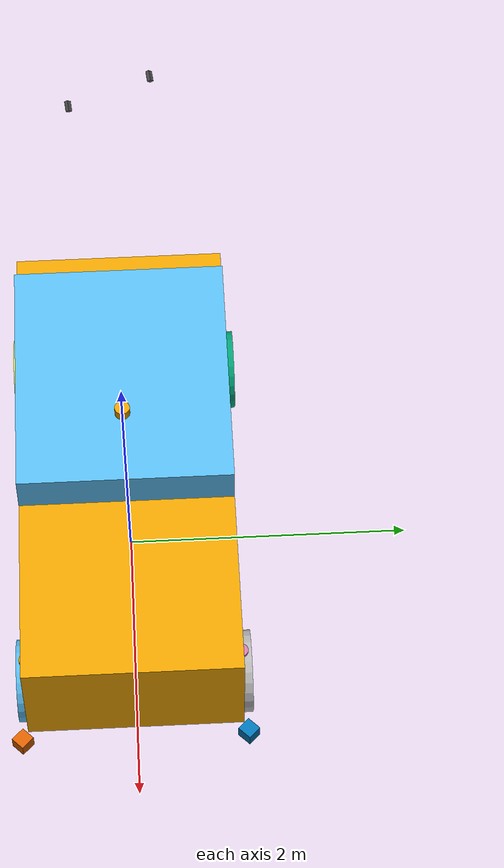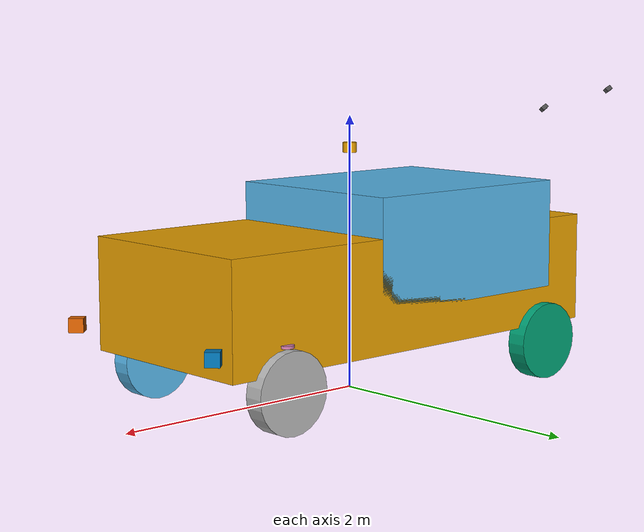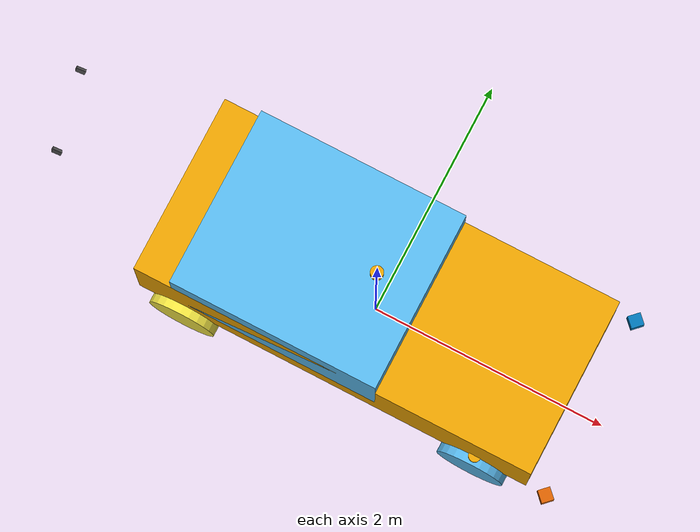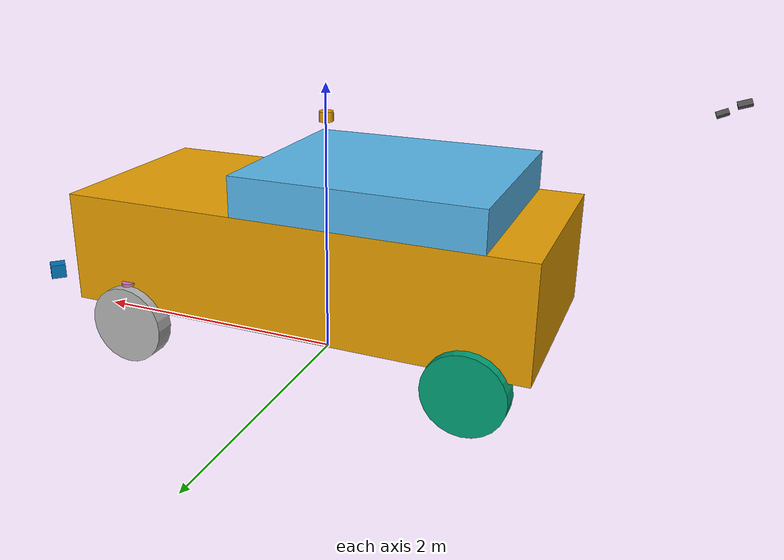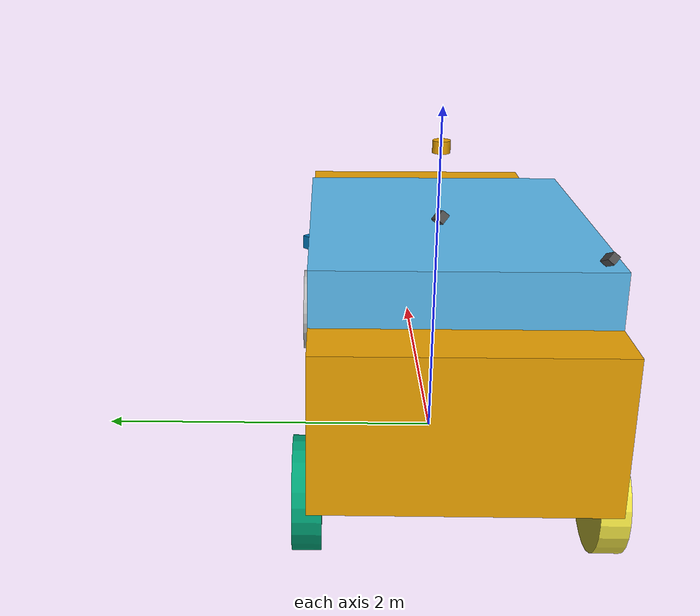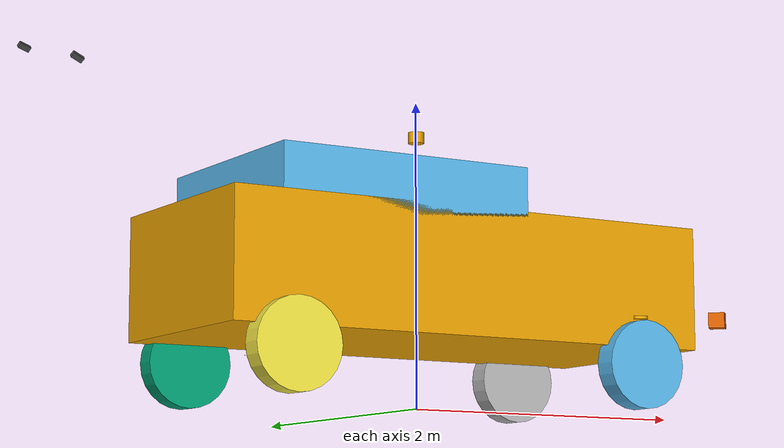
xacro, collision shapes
<?xml version="1.0" ?>
<robot name="atlascar2" version="1.0">
  <link name="base_link">
    <inertial>
      <origin xyz="0.0 0.0 0.0" rpy="0.0 0.0 0.0"/>
      <mass value="2.0"/>
      <inertia ixx="1.0" ixy="0.0" ixz="0.0" iyy="1.0" iyz="0.0" izz="1.0"/>
    </inertial>
    <visual>
      <origin xyz="1.7375 -0.8875000000000001 -0.235" rpy="0.0 0.0 1.5707963267948966"/>
      <geometry>
        <mesh filename="file:////home/rafael/catkin_ws/src/atlascar2/atlascar2_description/meshes/atlascar2_nowheels.dae"/>
      </geometry>
    </visual>
    <collision>
      <origin xyz="0.0 0.0 0.52" rpy="0 0 0"/>
      <geometry>
        <box size="3.375 1.475 0.805"/>
      </geometry>
    </collision>
  </link>
  <link name="top_collision">
    <collision>
      <origin xyz="-0.49642857142857144 0.0 0.0" rpy="0 0 0"/>
      <geometry>
        <box size="1.7375 1.475 0.805"/>
      </geometry>
    </collision>
  </link>
  <joint name="base_link_to_top_collision" type="fixed">
    <origin xyz="0.0 0.0 0.805" rpy="0.0 0.0 0.0"/>
    <parent link="base_link"/>
    <child link="top_collision"/>
  </joint>
  <link name="base_footprint">
    <collision>
      <origin xyz="0.0 0.0 0.0" rpy="0 0 0"/>
      <geometry>
        <sphere radius="1e-08"/>
      </geometry>
    </collision>
  </link>
  <joint name="base_footprint_joint" type="fixed">
    <origin xyz="0.0 0.0 0.285" rpy="0.0 0.0 0.0"/>
    <parent link="base_footprint"/>
    <child link="base_link"/>
  </joint>
  <link name="world"/>
  <joint name="world_to_base_footprint" type="fixed">
    <origin xyz="0.0 0.0 0.0" rpy="0.0 0.0 0.0"/>
    <parent link="world"/>
    <child link="base_footprint"/>
  </joint>
  <link name="top_right_camera">
    <inertial>
      <mass value="0.085"/>
      <inertia ixx="1e-06" ixy="0.0" ixz="0.0" iyy="1e-06" iyz="0.0" izz="1e-06"/>
    </inertial>
    <visual>
      <origin xyz="0.0 0.0 0.0" rpy="0.0 0.0 0.0"/>
      <geometry>
        <box size="0.0754 0.029 0.035"/>
      </geometry>
      <material name="dark_grey"/>
    </visual>
    <collision>
      <origin xyz="0.0 0.0 0.0" rpy="0.0 0.0 0.0"/>
      <geometry>
        <box size="0.0754 0.029 0.035"/>
      </geometry>
    </collision>
  </link>
  <link name="top_right_camera_optical"/>
  <joint name="top_right_camera_optical_joint" type="fixed">
    <origin xyz="0.0 0.0 0.0" rpy="-1.570796 0.0 -1.570796"/>
    <parent link="top_right_camera"/>
    <child link="top_right_camera_optical"/>
  </joint>
  <gazebo reference="top_right_camera_optical">
    <material>Gazebo/Grey</material>
    <sensor name="top_right_camera" type="camera">
      <update_rate>120</update_rate>
      <camera name="top_right_camera">
        <pose>0 0 0 0 -1.5707 1.5707</pose>
        <horizontal_fov>1.0471975512</horizontal_fov>
        <image>
          <width>1272</width>
          <height>1016</height>
          <format>R8G8B8</format>
        </image>
        <clip>
          <near>0.5</near>
          <far>300</far>
        </clip>
        <noise>
          <type>gaussian</type>
          <mean>0.0</mean>
          <stddev>0.007</stddev>
        </noise>
      </camera>
      <plugin filename="libgazebo_ros_camera.so" name="camera_controller">
        <alwaysOn>true</alwaysOn>
        <updateRate>120</updateRate>
        <cameraName>top_right_camera</cameraName>
        <imageTopicName>image_raw</imageTopicName>
        <cameraInfoTopicName>camera_info</cameraInfoTopicName>
        <frameName>top_right_camera_optical</frameName>
        <hackBaseline>0.07</hackBaseline>
        <distortionK1>0.0</distortionK1>
        <distortionK2>0.0</distortionK2>
        <distortionK3>0.0</distortionK3>
        <distortionT1>0.0</distortionT1>
        <distortionT2>0.0</distortionT2>
      </plugin>
    </sensor>
  </gazebo>
  <joint name="{parent}_to_top_right_camera" type="fixed">
    <origin xyz="-2.506966815113514 -0.3112282304999219 1.6544852784893538" rpy="0.7446243395800726 0.390989048771717 0.12294531445427181"/>
    <parent link="base_link"/>
    <child link="top_right_camera"/>
  </joint>
  <link name="top_left_camera">
    <inertial>
      <mass value="0.085"/>
      <inertia ixx="1e-06" ixy="0.0" ixz="0.0" iyy="1e-06" iyz="0.0" izz="1e-06"/>
    </inertial>
    <visual>
      <origin xyz="0.0 0.0 0.0" rpy="0.0 0.0 0.0"/>
      <geometry>
        <box size="0.0754 0.029 0.035"/>
      </geometry>
      <material name="dark_grey"/>
    </visual>
    <collision>
      <origin xyz="0.0 0.0 0.0" rpy="0.0 0.0 0.0"/>
      <geometry>
        <box size="0.0754 0.029 0.035"/>
      </geometry>
    </collision>
  </link>
  <link name="top_left_camera_optical"/>
  <joint name="top_left_camera_optical_joint" type="fixed">
    <origin xyz="0.0 0.0 0.0" rpy="-1.570796 0.0 -1.570796"/>
    <parent link="top_left_camera"/>
    <child link="top_left_camera_optical"/>
  </joint>
  <gazebo reference="top_left_camera_optical">
    <material>Gazebo/Grey</material>
    <sensor name="top_left_camera" type="camera">
      <update_rate>120</update_rate>
      <camera name="top_left_camera">
        <pose>0 0 0 0 -1.5707 1.5707</pose>
        <horizontal_fov>1.0471975512</horizontal_fov>
        <image>
          <width>1272</width>
          <height>1016</height>
          <format>R8G8B8</format>
        </image>
        <clip>
          <near>0.5</near>
          <far>300</far>
        </clip>
        <noise>
          <type>gaussian</type>
          <mean>0.0</mean>
          <stddev>0.007</stddev>
        </noise>
      </camera>
      <plugin filename="libgazebo_ros_camera.so" name="camera_controller">
        <alwaysOn>true</alwaysOn>
        <updateRate>120</updateRate>
        <cameraName>top_left_camera</cameraName>
        <imageTopicName>image_raw</imageTopicName>
        <cameraInfoTopicName>camera_info</cameraInfoTopicName>
        <frameName>top_left_camera_optical</frameName>
        <hackBaseline>0.07</hackBaseline>
        <distortionK1>0.0</distortionK1>
        <distortionK2>0.0</distortionK2>
        <distortionK3>0.0</distortionK3>
        <distortionT1>0.0</distortionT1>
        <distortionT2>0.0</distortionT2>
      </plugin>
    </sensor>
  </gazebo>
  <joint name="{parent}_to_top_left_camera" type="fixed">
    <origin xyz="-2.609787616289452 0.2802627642559952 1.8279500114804843" rpy="0.69396180745709 0.3040098754709762 0.1324511238181686"/>
    <parent link="base_link"/>
    <child link="top_left_camera"/>
  </joint>
  <joint name="top_laser_base_mount_joint" type="fixed">
    <origin xyz="0.0 0.0 1.4500000000000002" rpy="0.0 -0.0 0.0"/>
    <parent link="base_link"/>
    <child link="top_laser_base_link"/>
  </joint>
  <link name="top_laser_base_link">
    <inertial>
      <origin xyz="0.0 0.0 0.03585" rpy="0 0 0"/>
      <mass value="0.83"/>
      <inertia ixx="0.000908059425" ixy="0.0" ixz="0.0" iyy="0.000908059425" iyz="0.0" izz="0.0011049624"/>
    </inertial>
    <visual>
      <geometry>
        <mesh filename="package://velodyne_description/meshes/VLP16_base_1.dae"/>
      </geometry>
    </visual>
    <visual>
      <geometry>
        <mesh filename="package://velodyne_description/meshes/VLP16_base_2.dae"/>
      </geometry>
    </visual>
    <collision>
      <origin xyz="0.0 0.0 0.03585" rpy="0.0 0.0 0.0"/>
      <geometry>
        <cylinder radius="0.0516" length="0.0717"/>
      </geometry>
    </collision>
  </link>
  <joint name="top_laser_base_scan_joint" type="fixed">
    <origin xyz="0.0 0.0 0.0377" rpy="0.0 0.0 0.0"/>
    <parent link="top_laser_base_link"/>
    <child link="top_laser"/>
  </joint>
  <link name="top_laser">
    <inertial>
      <origin xyz="0.0 0.0 0.0" rpy="0 0 0"/>
      <mass value="0.01"/>
      <inertia ixx="1e-07" ixy="0.0" ixz="0.0" iyy="1e-07" iyz="0.0" izz="1e-07"/>
    </inertial>
    <visual>
      <origin xyz="0.0 0.0 -0.0377" rpy="0 0 0"/>
      <geometry>
        <mesh filename="package://velodyne_description/meshes/VLP16_scan.dae"/>
      </geometry>
    </visual>
    <collision>
      <geometry>
        <sphere radius="0.0"/>
      </geometry>
    </collision>
  </link>
  <gazebo reference="top_laser">
    <sensor name="top_laser-VLP16" type="ray">
      <pose>0 0 0 0 0 0</pose>
      <visualize>false</visualize>
      <update_rate>10</update_rate>
      <ray>
        <scan>
          <horizontal>
            <samples>1875</samples>
            <resolution>1</resolution>
            <min_angle>-3.141592653589793</min_angle>
            <max_angle>3.141592653589793</max_angle>
          </horizontal>
          <vertical>
            <samples>16</samples>
            <resolution>1</resolution>
            <min_angle>-0.2617993877991494</min_angle>
            <max_angle> 0.2617993877991494</max_angle>
          </vertical>
        </scan>
        <range>
          <min>0.3</min>
          <max>131.0</max>
          <resolution>0.001</resolution>
        </range>
        <noise>
          <type>gaussian</type>
          <mean>0.0</mean>
          <stddev>0.0</stddev>
        </noise>
      </ray>
      <plugin filename="libgazebo_ros_velodyne_laser.so" name="gazebo_ros_laser_controller">
        <topicName>top_laser/cloud</topicName>
        <frameName>top_laser</frameName>
        <organize_cloud>False</organize_cloud>
        <min_range>0.9</min_range>
        <max_range>130.0</max_range>
        <gaussianNoise>0.008</gaussianNoise>
      </plugin>
    </sensor>
  </gazebo>
  <link name="front_steer_link">
    <inertial>
      <origin xyz="0.0 0.0 0.0" rpy="0.0 0.0 0.0"/>
      <mass value="11.16"/>
      <inertia ixx="0.246171" ixy="0.0" ixz="0.0" iyy="0.246171" iyz="0.0" izz="0.4532354999999999"/>
    </inertial>
    <collision>
      <origin xyz="0.0 0.0 0.0" rpy="0.0 0.0 0.0"/>
      <geometry>
        <cylinder radius="0.05" length="0.02"/>
      </geometry>
    </collision>
  </link>
  <joint name="front_steer_joint" type="revolute">
    <origin xyz="1.2375 0.0 0.305" rpy="0.0 0.0 0.0"/>
    <axis xyz="0.0 0.0 1.0"/>
    <parent link="base_link"/>
    <child link="front_steer_link"/>
    <limit effort="15.0" lower="-3.141592653589793" upper="3.141592653589793" velocity="5.0"/>
    <dynamics damping="0.0" friction="0.0"/>
  </joint>
  <transmission name="front_steer_joint_trans">
    <type>transmission_interface/SimpleTransmission</type>
    <actuator name="front_steer_joint_motor"/>
    <joint name="front_steer_joint">
      <hardwareInterface>hardware_interface/PositionJointInterface</hardwareInterface>
    </joint>
  </transmission>
  <gazebo reference="front_steer_link">
    <material>Gazebo/Yellow</material>
  </gazebo>
  <link name="rear_wheel_link">
    <inertial>
      <origin xyz="0.0 0.0 0.0" rpy="0.0 0.0 0.0"/>
      <mass value="11.16"/>
      <inertia ixx="0.246171" ixy="0.0" ixz="0.0" iyy="0.246171" iyz="0.0" izz="0.4532354999999999"/>
    </inertial>
    <collision>
      <origin xyz="0.0 0.0 0.0" rpy="0.0 0.0 0.0"/>
      <geometry>
        <cylinder radius="0.0028499999999999997" length="0.00145"/>
      </geometry>
    </collision>
  </link>
  <joint name="rear_wheel_joint" type="continuous">
    <origin xyz="-1.2375 0.0 0.0" rpy="-1.5707963267948966 0.0 -1.5707963267948966"/>
    <axis xyz="1.0 0.0 0.0"/>
    <parent link="base_link"/>
    <child link="rear_wheel_link"/>
    <dynamics damping="0.0" friction="0.0"/>
  </joint>
  <transmission name="rear_wheel_joint_trans">
    <type>transmission_interface/SimpleTransmission</type>
    <actuator name="rear_wheel_joint_motor"/>
    <joint name="rear_wheel_joint">
      <hardwareInterface>hardware_interface/VelocityJointInterface</hardwareInterface>
    </joint>
  </transmission>
  <link name="left_laser">
    <inertial>
      <origin xyz="0.0 0.0 0.0" rpy="0 0 0"/>
      <mass value="1.1"/>
      <inertia ixx="0.00307156543804" ixy="0.0" ixz="0.0" iyy="0.0031284904152700005" iyz="0.0" izz="0.00196432421427"/>
    </inertial>
    <visual>
      <origin xyz="0.0 0.0 0.0" rpy="0.0 0.0 0.0"/>
      <geometry>
        <mesh filename="package://lms1xx/meshes/sick-lms1xx.dae"/>
      </geometry>
    </visual>
    <collision>
      <origin xyz="0.0 0.0 -0.05" rpy="0.0 0.0 0.0"/>
      <geometry>
        <box size="0.105 0.1 0.1"/>
      </geometry>
    </collision>
  </link>
  <gazebo reference="left_laser">
    <turnGravityOff>true</turnGravityOff>
    <sensor name="left_laser" type="ray">
      <pose>0 0 0 0 0 0</pose>
      <visualize>false</visualize>
      <update_rate>50</update_rate>
      <ray>
        <scan>
          <horizontal>
            <samples>720</samples>
            <resolution>1</resolution>
            <min_angle>-2.35619</min_angle>
            <max_angle>2.35619</max_angle>
          </horizontal>
        </scan>
        <range>
          <min>0.1</min>
          <max>30.0</max>
          <resolution>0.01</resolution>
        </range>
        <noise>
          <type>gaussian</type>
          <mean>0.0</mean>
          <stddev>0.001</stddev>
        </noise>
      </ray>
      <plugin filename="libgazebo_ros_laser.so" name="gazebo_ros_laser">
        <topicName>/left_laser/scan</topicName>
        <frameName>left_laser</frameName>
        <robotNamespace>/</robotNamespace>
      </plugin>
    </sensor>
  </gazebo>
  <joint name="{parent}_to_left_laser" type="fixed">
    <origin xyz="1.8575 0.76 0.37" rpy="0.0 0.0 0.7854"/>
    <parent link="base_link"/>
    <child link="left_laser"/>
  </joint>
  <link name="right_laser">
    <inertial>
      <origin xyz="0.0 0.0 0.0" rpy="0 0 0"/>
      <mass value="1.1"/>
      <inertia ixx="0.00307156543804" ixy="0.0" ixz="0.0" iyy="0.0031284904152700005" iyz="0.0" izz="0.00196432421427"/>
    </inertial>
    <visual>
      <origin xyz="0.0 0.0 0.0" rpy="0.0 0.0 0.0"/>
      <geometry>
        <mesh filename="package://lms1xx/meshes/sick-lms1xx.dae"/>
      </geometry>
    </visual>
    <collision>
      <origin xyz="0.0 0.0 -0.05" rpy="0.0 0.0 0.0"/>
      <geometry>
        <box size="0.105 0.1 0.1"/>
      </geometry>
    </collision>
  </link>
  <gazebo reference="right_laser">
    <turnGravityOff>true</turnGravityOff>
    <sensor name="right_laser" type="ray">
      <pose>0 0 0 0 0 0</pose>
      <visualize>false</visualize>
      <update_rate>50</update_rate>
      <ray>
        <scan>
          <horizontal>
            <samples>720</samples>
            <resolution>1</resolution>
            <min_angle>-2.35619</min_angle>
            <max_angle>2.35619</max_angle>
          </horizontal>
        </scan>
        <range>
          <min>0.1</min>
          <max>30.0</max>
          <resolution>0.01</resolution>
        </range>
        <noise>
          <type>gaussian</type>
          <mean>0.0</mean>
          <stddev>0.001</stddev>
        </noise>
      </ray>
      <plugin filename="libgazebo_ros_laser.so" name="gazebo_ros_laser">
        <topicName>/right_laser/scan</topicName>
        <frameName>right_laser</frameName>
        <robotNamespace>/</robotNamespace>
      </plugin>
    </sensor>
  </gazebo>
  <joint name="{parent}_to_right_laser" type="fixed">
    <origin xyz="1.8575 -0.76 0.37" rpy="0.0 0.0 -0.7854"/>
    <parent link="base_link"/>
    <child link="right_laser"/>
  </joint>
  <link name="front_right_steer_link">
    <inertial>
      <origin xyz="0.0 0.0 0.0" rpy="0.0 0.0 0.0"/>
      <mass value="11.16"/>
      <inertia ixx="0.246171" ixy="0.0" ixz="0.0" iyy="0.246171" iyz="0.0" izz="0.4532354999999999"/>
    </inertial>
    <collision>
      <origin xyz="0.0 0.0 0.0" rpy="0.0 0.0 0.0"/>
      <geometry>
        <cylinder radius="0.05" length="0.02"/>
      </geometry>
    </collision>
  </link>
  <joint name="front_right_steer_joint" type="revolute">
    <origin xyz="1.2375 0.7375 0.305" rpy="0.0 0.0 0.0"/>
    <axis xyz="0.0 0.0 1.0"/>
    <parent link="base_link"/>
    <child link="front_right_steer_link"/>
    <limit effort="15.0" lower="-3.141592653589793" upper="3.141592653589793" velocity="5.0"/>
    <dynamics damping="0.0" friction="0.0"/>
  </joint>
  <link name="front_right_wheel_link">
    <inertial>
      <origin xyz="0.0 0.0 0.0" rpy="0.0 0.0 0.0"/>
      <mass value="11.16"/>
      <inertia ixx="0.246171" ixy="0.0" ixz="0.0" iyy="0.246171" iyz="0.0" izz="0.4532354999999999"/>
    </inertial>
    <visual>
      <origin xyz="0.0 0.0 0.0" rpy="0.0 0.0 0.0"/>
      <geometry>
        <mesh filename="file:////home/rafael/catkin_ws/src/atlascar2/atlascar2_description/meshes/atlascar2_wheel.dae"/>
      </geometry>
    </visual>
    <collision>
      <origin xyz="0.0 0.0 0.0" rpy="-1.5707963267948966 0.0 -1.5707963267948966"/>
      <geometry>
        <cylinder radius="0.285" length="0.145"/>
      </geometry>
    </collision>
  </link>
  <joint name="front_right_wheel_joint" type="continuous">
    <origin xyz="0.0 0.0 -0.305" rpy="-1.5707963267948966 0.0 -1.5707963267948966"/>
    <axis xyz="-1.0 0.0 0.0"/>
    <parent link="front_right_steer_link"/>
    <child link="front_right_wheel_link"/>
    <dynamics damping="0.0" friction="0.0"/>
  </joint>
  <transmission name="front_right_steer_joint_trans">
    <type>transmission_interface/SimpleTransmission</type>
    <actuator name="front_right_steer_joint_motor"/>
    <joint name="front_right_steer_joint">
      <hardwareInterface>hardware_interface/EffortJointInterface</hardwareInterface>
    </joint>
  </transmission>
  <transmission name="front_right_wheel_joint_trans">
    <type>transmission_interface/SimpleTransmission</type>
    <actuator name="front_right_wheel_joint_motor"/>
    <joint name="front_right_wheel_joint">
      <hardwareInterface>hardware_interface/EffortJointInterface</hardwareInterface>
    </joint>
  </transmission>
  <link name="front_left_steer_link">
    <inertial>
      <origin xyz="0.0 0.0 0.0" rpy="0.0 0.0 0.0"/>
      <mass value="11.16"/>
      <inertia ixx="0.246171" ixy="0.0" ixz="0.0" iyy="0.246171" iyz="0.0" izz="0.4532354999999999"/>
    </inertial>
    <collision>
      <origin xyz="0.0 0.0 0.0" rpy="0.0 0.0 0.0"/>
      <geometry>
        <cylinder radius="0.05" length="0.02"/>
      </geometry>
    </collision>
  </link>
  <joint name="front_left_steer_joint" type="revolute">
    <origin xyz="1.2375 -0.7375 0.305" rpy="0.0 0.0 0.0"/>
    <axis xyz="0.0 0.0 1.0"/>
    <parent link="base_link"/>
    <child link="front_left_steer_link"/>
    <limit effort="15.0" lower="-3.141592653589793" upper="3.141592653589793" velocity="5.0"/>
    <dynamics damping="0.0" friction="0.0"/>
  </joint>
  <link name="front_left_wheel_link">
    <inertial>
      <origin xyz="0.0 0.0 0.0" rpy="0.0 0.0 0.0"/>
      <mass value="11.16"/>
      <inertia ixx="0.246171" ixy="0.0" ixz="0.0" iyy="0.246171" iyz="0.0" izz="0.4532354999999999"/>
    </inertial>
    <visual>
      <origin xyz="0.0 0.0 0.0" rpy="0.0 0.0 0.0"/>
      <geometry>
        <mesh filename="file:////home/rafael/catkin_ws/src/atlascar2/atlascar2_description/meshes/atlascar2_wheel.dae"/>
      </geometry>
    </visual>
    <collision>
      <origin xyz="0.0 0.0 0.0" rpy="-1.5707963267948966 0.0 1.5707963267948966"/>
      <geometry>
        <cylinder radius="0.285" length="0.145"/>
      </geometry>
    </collision>
  </link>
  <joint name="front_left_wheel_joint" type="continuous">
    <origin xyz="0.0 0.0 -0.305" rpy="-1.5707963267948966 0.0 1.5707963267948966"/>
    <axis xyz="1.0 0.0 0.0"/>
    <parent link="front_left_steer_link"/>
    <child link="front_left_wheel_link"/>
    <dynamics damping="0.0" friction="0.0"/>
  </joint>
  <transmission name="front_left_steer_joint_trans">
    <type>transmission_interface/SimpleTransmission</type>
    <actuator name="front_left_steer_joint_motor"/>
    <joint name="front_left_steer_joint">
      <hardwareInterface>hardware_interface/EffortJointInterface</hardwareInterface>
    </joint>
  </transmission>
  <transmission name="front_left_wheel_joint_trans">
    <type>transmission_interface/SimpleTransmission</type>
    <actuator name="front_left_wheel_joint_motor"/>
    <joint name="front_left_wheel_joint">
      <hardwareInterface>hardware_interface/EffortJointInterface</hardwareInterface>
    </joint>
  </transmission>
  <link name="rear_right_wheel_link">
    <inertial>
      <origin xyz="0.0 0.0 0.0" rpy="0.0 0.0 0.0"/>
      <mass value="11.16"/>
      <inertia ixx="0.246171" ixy="0.0" ixz="0.0" iyy="0.246171" iyz="0.0" izz="0.4532354999999999"/>
    </inertial>
    <visual>
      <origin xyz="0.0 0.0 0.0" rpy="0.0 0.0 0.0"/>
      <geometry>
        <mesh filename="file:////home/rafael/catkin_ws/src/atlascar2/atlascar2_description/meshes/atlascar2_wheel.dae"/>
      </geometry>
    </visual>
    <collision>
      <origin xyz="0.0 0.0 0.0" rpy="-1.5707963267948966 0.0 -1.5707963267948966"/>
      <geometry>
        <cylinder radius="0.285" length="0.145"/>
      </geometry>
    </collision>
  </link>
  <joint name="rear_right_wheel_joint" type="continuous">
    <origin xyz="-1.2875 0.7375 0.0" rpy="-1.5707963267948966 0.0 -1.5707963267948966"/>
    <axis xyz="-1.0 0.0 0.0"/>
    <parent link="base_link"/>
    <child link="rear_right_wheel_link"/>
    <dynamics damping="0.0" friction="0.0"/>
  </joint>
  <transmission name="rear_right_wheel_joint_trans">
    <type>transmission_interface/SimpleTransmission</type>
    <actuator name="rear_right_wheel_joint_motor"/>
    <joint name="rear_right_wheel_joint">
      <hardwareInterface>hardware_interface/EffortJointInterface</hardwareInterface>
    </joint>
  </transmission>
  <link name="rear_left_wheel_link">
    <inertial>
      <origin xyz="0.0 0.0 0.0" rpy="0.0 0.0 0.0"/>
      <mass value="11.16"/>
      <inertia ixx="0.246171" ixy="0.0" ixz="0.0" iyy="0.246171" iyz="0.0" izz="0.4532354999999999"/>
    </inertial>
    <visual>
      <origin xyz="0.0 0.0 0.0" rpy="0.0 0.0 0.0"/>
      <geometry>
        <mesh filename="file:////home/rafael/catkin_ws/src/atlascar2/atlascar2_description/meshes/atlascar2_wheel.dae"/>
      </geometry>
    </visual>
    <collision>
      <origin xyz="0.0 0.0 0.0" rpy="-1.5707963267948966 0.0 1.5707963267948966"/>
      <geometry>
        <cylinder radius="0.285" length="0.145"/>
      </geometry>
    </collision>
  </link>
  <joint name="rear_left_wheel_joint" type="continuous">
    <origin xyz="-1.2875 -0.7375 0.0" rpy="-1.5707963267948966 0.0 1.5707963267948966"/>
    <axis xyz="1.0 0.0 0.0"/>
    <parent link="base_link"/>
    <child link="rear_left_wheel_link"/>
    <dynamics damping="0.0" friction="0.0"/>
  </joint>
  <transmission name="rear_left_wheel_joint_trans">
    <type>transmission_interface/SimpleTransmission</type>
    <actuator name="rear_left_wheel_joint_motor"/>
    <joint name="rear_left_wheel_joint">
      <hardwareInterface>hardware_interface/EffortJointInterface</hardwareInterface>
    </joint>
  </transmission>
  <gazebo>
    <plugin filename="libgazebo_ros_control.so" name="gazebo_ros_control">
      <robotSimType>steer_bot_hardware_gazebo/SteerBotHardwareGazebo</robotSimType>
    </plugin>
  </gazebo>
  <gazebo reference="base_footprint">
    <material>Gazebo/Purple</material>
  </gazebo>
  <link name="pattern_link">
    <origin xyz="0 0 0" rpy="0 0 0"/>
    <visual name="pattern_1_visual">
      <origin xyz="0 0 0" rpy="0 0 0"/>
      <geometry>
        <mesh filename="package://atlascar2_gazebo/models/charuco_800x600/charuco_800x600.dae"/>
      </geometry>
    </visual>
  </link>
  <joint name="world-pattern_link" type="fixed">
    <origin xyz="2.1196767724022947 0.11115631356790558 1.7810701835098057" rpy="-1.6196809177686766 0.9538883423404817 -1.6106085746501164"/>
    <parent link="world"/>
    <child link="pattern_link"/>
  </joint>
</robot>
